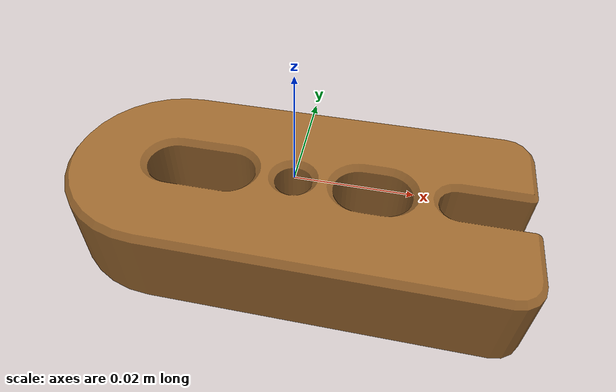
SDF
<?xml version="1.0" ?>
<sdf version="1.6">
  <model name="relay_part_04">
    <link name="link">
      <gravity>false</gravity>
      <visual name="visual">
        <geometry>
          <mesh>
            <uri>file:///root/workcell_ws_classic/src/descriptions/meshes/feeder/kiro/Relay_Part_04.STL</uri>
            <scale>1 1 1</scale>
          </mesh>
        </geometry>
        <material>
          <!-- Relay Part 04: copper/bronze metallic -->
          <ambient>0.35 0.22 0.1 1</ambient>
          <diffuse>0.6 0.4 0.18 1</diffuse>
          <specular>0.3 0.3 0.3 1</specular>
          <emissive>0 0 0 1</emissive>
        </material>
      </visual>

        <inertial>
          <mass>0.5</mass>
          <inertia>
            <ixx>0.001</ixx>
            <ixy>0</ixy>
            <ixz>0</ixz>
            <iyy>0.001</iyy>
            <iyz>0</iyz>
            <izz>0.001</izz>
          </inertia>
        </inertial>
    </link>
  </model>
</sdf>
